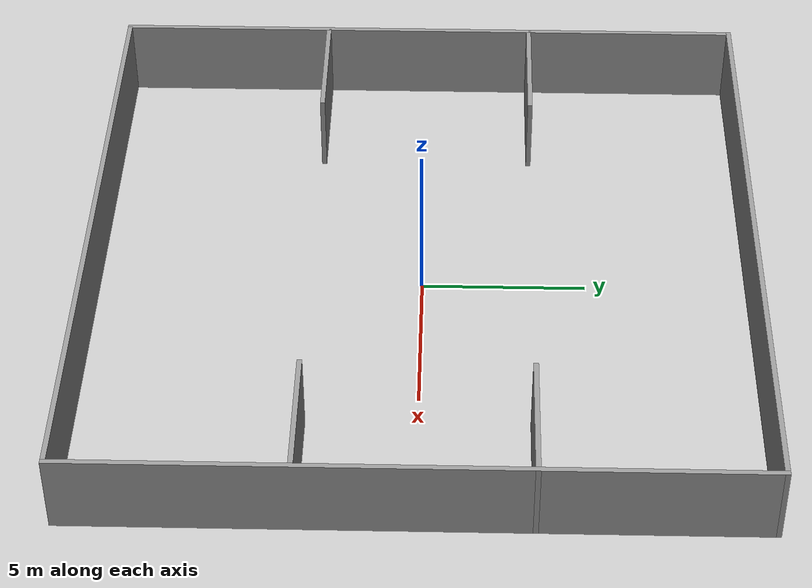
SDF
<?xml version='1.0'?>
<sdf version='1.7'>
  <model name='lastworld'>
    <pose>0 0 0 0 -0 0</pose>
    <link name='Wall_10'>
      <collision name='Wall_10_Collision'>
        <geometry>
          <box>
            <size>20.15 0.15 2.5</size>
          </box>
        </geometry>
        <pose>0 0 1.25 0 -0 0</pose>
      </collision>
      <visual name='Wall_10_Visual'>
        <pose>0 0 1.25 0 -0 0</pose>
        <geometry>
          <box>
            <size>20.15 0.15 2.5</size>
          </box>
        </geometry>
        <material>
          <script>
            <uri>file://media/materials/scripts/gazebo.material</uri>
            <name>Gazebo/Grey</name>
          </script>
          <ambient>1 1 1 1</ambient>
        </material>
        <meta>
          <layer>0</layer>
        </meta>
      </visual>
      <pose>0 -10 0 0 -0 0</pose>
    </link>
    <link name='Wall_12'>
      <collision name='Wall_12_Collision'>
        <geometry>
          <box>
            <size>20.15 0.15 2.5</size>
          </box>
        </geometry>
        <pose>0 0 1.25 0 -0 0</pose>
      </collision>
      <visual name='Wall_12_Visual'>
        <pose>0 0 1.25 0 -0 0</pose>
        <geometry>
          <box>
            <size>20.15 0.15 2.5</size>
          </box>
        </geometry>
        <material>
          <script>
            <uri>file://media/materials/scripts/gazebo.material</uri>
            <name>Gazebo/Grey</name>
          </script>
          <ambient>1 1 1 1</ambient>
        </material>
        <meta>
          <layer>0</layer>
        </meta>
      </visual>
      <pose>10 0 0 0 -0 1.5708</pose>
    </link>
    <link name='Wall_14'>
      <collision name='Wall_14_Collision'>
        <geometry>
          <box>
            <size>20.15 0.15 2.5</size>
          </box>
        </geometry>
        <pose>0 0 1.25 0 -0 0</pose>
      </collision>
      <visual name='Wall_14_Visual'>
        <pose>0 0 1.25 0 -0 0</pose>
        <geometry>
          <box>
            <size>20.15 0.15 2.5</size>
          </box>
        </geometry>
        <material>
          <script>
            <uri>file://media/materials/scripts/gazebo.material</uri>
            <name>Gazebo/Grey</name>
          </script>
          <ambient>1 1 1 1</ambient>
        </material>
        <meta>
          <layer>0</layer>
        </meta>
      </visual>
      <pose>-10 0 0 0 -0 1.5708</pose>
    </link>
    <link name='Wall_16'>
      <collision name='Wall_16_Collision'>
        <geometry>
          <box>
            <size>20.15 0.15 2.5</size>
          </box>
        </geometry>
        <pose>0 0 1.25 0 -0 0</pose>
      </collision>
      <visual name='Wall_16_Visual'>
        <pose>0 0 1.25 0 -0 0</pose>
        <geometry>
          <box>
            <size>20.15 0.15 2.5</size>
          </box>
        </geometry>
        <material>
          <script>
            <uri>file://media/materials/scripts/gazebo.material</uri>
            <name>Gazebo/Grey</name>
          </script>
          <ambient>1 1 1 1</ambient>
        </material>
        <meta>
          <layer>0</layer>
        </meta>
      </visual>
      <pose>0 10 0 0 -0 0</pose>
    </link>
    <link name='Wall_19'>
      <collision name='Wall_19_Collision'>
        <geometry>
          <box>
            <size>4.15 0.15 2.5</size>
          </box>
        </geometry>
        <pose>0 0 1.25 0 -0 0</pose>
      </collision>
      <visual name='Wall_19_Visual'>
        <pose>0 0 1.25 0 -0 0</pose>
        <geometry>
          <box>
            <size>4.15 0.15 2.5</size>
          </box>
        </geometry>
        <material>
          <script>
            <uri>file://media/materials/scripts/gazebo.material</uri>
            <name>Gazebo/Grey</name>
          </script>
          <ambient>1 1 1 1</ambient>
        </material>
        <meta>
          <layer>0</layer>
        </meta>
      </visual>
      <pose>8 -3.334 0 0 -0 3.14159</pose>
    </link>
    <link name='Wall_21'>
      <collision name='Wall_21_Collision'>
        <geometry>
          <box>
            <size>4.15 0.15 2.5</size>
          </box>
        </geometry>
        <pose>0 0 1.25 0 -0 0</pose>
      </collision>
      <visual name='Wall_21_Visual'>
        <pose>0 0 1.25 0 -0 0</pose>
        <geometry>
          <box>
            <size>4.15 0.15 2.5</size>
          </box>
        </geometry>
        <material>
          <script>
            <uri>file://media/materials/scripts/gazebo.material</uri>
            <name>Gazebo/Grey</name>
          </script>
          <ambient>1 1 1 1</ambient>
        </material>
        <meta>
          <layer>0</layer>
        </meta>
      </visual>
      <pose>8 3.334 0 0 -0 3.14159</pose>
    </link>
    <link name='Wall_23'>
      <collision name='Wall_23_Collision'>
        <geometry>
          <box>
            <size>4.15 0.15 2.5</size>
          </box>
        </geometry>
        <pose>0 0 1.25 0 -0 0</pose>
      </collision>
      <visual name='Wall_23_Visual'>
        <pose>0 0 1.25 0 -0 0</pose>
        <geometry>
          <box>
            <size>4.15 0.15 2.5</size>
          </box>
        </geometry>
        <material>
          <script>
            <uri>file://media/materials/scripts/gazebo.material</uri>
            <name>Gazebo/Grey</name>
          </script>
          <ambient>1 1 1 1</ambient>
        </material>
        <meta>
          <layer>0</layer>
        </meta>
      </visual>
      <pose>-8 3.334 0 0 -0 0</pose>
    </link>
    <link name='Wall_25'>
      <collision name='Wall_25_Collision'>
        <geometry>
          <box>
            <size>4.15 0.15 2.5</size>
          </box>
        </geometry>
        <pose>0 0 1.25 0 -0 0</pose>
      </collision>
      <visual name='Wall_25_Visual'>
        <pose>0 0 1.25 0 -0 0</pose>
        <geometry>
          <box>
            <size>4.15 0.15 2.5</size>
          </box>
        </geometry>
        <material>
          <script>
            <uri>file://media/materials/scripts/gazebo.material</uri>
            <name>Gazebo/Grey</name>
          </script>
          <ambient>1 1 1 1</ambient>
        </material>
        <meta>
          <layer>0</layer>
        </meta>
      </visual>
      <pose>-8 -3.334 0 0 -0 0</pose>
    </link>
    <static>1</static>
  </model>
</sdf>
